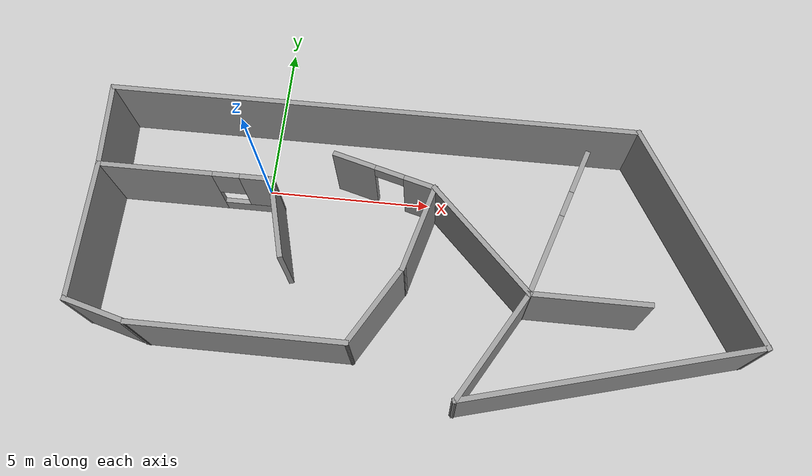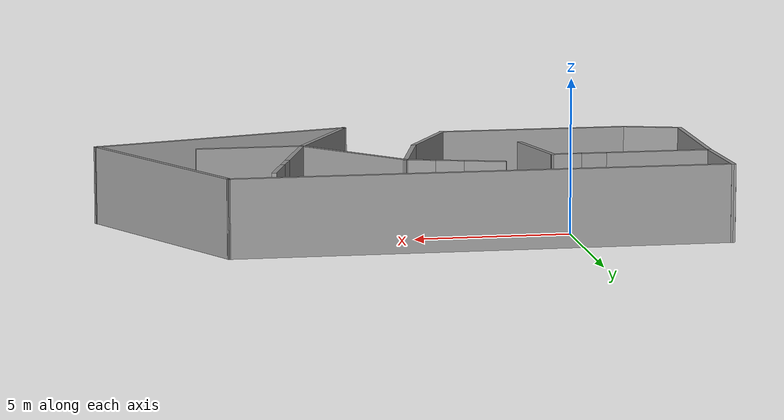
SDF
<?xml version='1.0'?>
<sdf version='1.7'>
  <model name='maze'>
    <pose>4.9378 -2.22526 0 0 -0 0</pose>
    <link name='Wall_0'>
      <collision name='Wall_0_Collision'>
        <geometry>
          <box>
            <size>4.25 0.15 2.5</size>
          </box>
        </geometry>
        <pose>0 0 1.25 0 -0 0</pose>
      </collision>
      <visual name='Wall_0_Visual'>
        <pose>0 0 1.25 0 -0 0</pose>
        <geometry>
          <box>
            <size>4.25 0.15 2.5</size>
          </box>
        </geometry>
        <material>
          <script>
            <uri>file://media/materials/scripts/gazebo.material</uri>
            <name>Gazebo/Grey</name>
          </script>
          <ambient>1 1 1 1</ambient>
        </material>
        <meta>
          <layer>0</layer>
        </meta>
      </visual>
      <pose>-9.5778 -0.404741 0 0 -0 -1.5708</pose>
    </link>
    <link name='Wall_1'>
      <collision name='Wall_1_Collision'>
        <geometry>
          <box>
            <size>2 0.15 2.5</size>
          </box>
        </geometry>
        <pose>0 0 1.25 0 -0 0</pose>
      </collision>
      <visual name='Wall_1_Visual'>
        <pose>0 0 1.25 0 -0 0</pose>
        <geometry>
          <box>
            <size>2 0.15 2.5</size>
          </box>
        </geometry>
        <material>
          <script>
            <uri>file://media/materials/scripts/gazebo.material</uri>
            <name>Gazebo/Grey</name>
          </script>
          <ambient>1 1 1 1</ambient>
        </material>
        <meta>
          <layer>0</layer>
        </meta>
      </visual>
      <pose>-8.68431 -2.69415 0 0 -0 -0.261799</pose>
    </link>
    <link name='Wall_10'>
      <collision name='Wall_10_Collision'>
        <geometry>
          <box>
            <size>2.69558 0.15 2.5</size>
          </box>
        </geometry>
        <pose>0 0 1.25 0 -0 0</pose>
      </collision>
      <visual name='Wall_10_Visual'>
        <pose>0 0 1.25 0 -0 0</pose>
        <geometry>
          <box>
            <size>2.69558 0.15 2.5</size>
          </box>
        </geometry>
        <material>
          <script>
            <uri>file://media/materials/scripts/gazebo.material</uri>
            <name>Gazebo/Grey</name>
          </script>
          <ambient>1 1 1 1</ambient>
        </material>
        <meta>
          <layer>0</layer>
        </meta>
      </visual>
      <pose>-9.6448 2.91629 0 0 -0 -1.51813</pose>
    </link>
    <link name='Wall_11'>
      <pose>-7.0278 1.64526 0 0 -0 0</pose>
      <visual name='Wall_11_Visual_0'>
        <pose>-0.898831 0 1.25 0 -0 0</pose>
        <geometry>
          <box>
            <size>3.45234 0.15 2.5</size>
          </box>
        </geometry>
        <material>
          <script>
            <uri>file://media/materials/scripts/gazebo.material</uri>
            <name>Gazebo/Grey</name>
          </script>
          <ambient>1 1 1 1</ambient>
        </material>
        <meta>
          <layer>0</layer>
        </meta>
      </visual>
      <collision name='Wall_11_Collision_0'>
        <geometry>
          <box>
            <size>3.45234 0.15 2.5</size>
          </box>
        </geometry>
        <pose>-0.898831 0 1.25 0 -0 0</pose>
      </collision>
      <visual name='Wall_11_Visual_1'>
        <pose>1.72617 0 0.25 0 -0 0</pose>
        <geometry>
          <box>
            <size>1.79766 0.15 0.5</size>
          </box>
        </geometry>
        <material>
          <script>
            <uri>file://media/materials/scripts/gazebo.material</uri>
            <name>Gazebo/Grey</name>
          </script>
          <ambient>1 1 1 1</ambient>
        </material>
        <meta>
          <layer>0</layer>
        </meta>
      </visual>
      <collision name='Wall_11_Collision_1'>
        <geometry>
          <box>
            <size>1.79766 0.15 0.5</size>
          </box>
        </geometry>
        <pose>1.72617 0 0.25 0 -0 0</pose>
      </collision>
      <visual name='Wall_11_Visual_2'>
        <pose>2.12617 0 1.5 0 -0 0</pose>
        <geometry>
          <box>
            <size>0.997662 0.15 2</size>
          </box>
        </geometry>
        <material>
          <script>
            <uri>file://media/materials/scripts/gazebo.material</uri>
            <name>Gazebo/Grey</name>
          </script>
          <ambient>1 1 1 1</ambient>
        </material>
        <meta>
          <layer>0</layer>
        </meta>
      </visual>
      <collision name='Wall_11_Collision_2'>
        <geometry>
          <box>
            <size>0.997662 0.15 2</size>
          </box>
        </geometry>
        <pose>2.12617 0 1.5 0 -0 0</pose>
      </collision>
      <visual name='Wall_11_Visual_3'>
        <pose>1.22734 0 1.9 0 -0 0</pose>
        <geometry>
          <box>
            <size>0.8 0.15 1.2</size>
          </box>
        </geometry>
        <material>
          <script>
            <uri>file://media/materials/scripts/gazebo.material</uri>
            <name>Gazebo/Grey</name>
          </script>
          <ambient>1 1 1 1</ambient>
        </material>
        <meta>
          <layer>0</layer>
        </meta>
      </visual>
      <collision name='Wall_11_Collision_3'>
        <geometry>
          <box>
            <size>0.8 0.15 1.2</size>
          </box>
        </geometry>
        <pose>1.22734 0 1.9 0 -0 0</pose>
      </collision>
    </link>
    <link name='Wall_12'>
      <collision name='Wall_12_Collision'>
        <geometry>
          <box>
            <size>2.5 0.15 2.5</size>
          </box>
        </geometry>
        <pose>0 0 1.25 0 -0 0</pose>
      </collision>
      <visual name='Wall_12_Visual'>
        <pose>0 0 1.25 0 -0 0</pose>
        <geometry>
          <box>
            <size>2.5 0.15 2.5</size>
          </box>
        </geometry>
        <material>
          <script>
            <uri>file://media/materials/scripts/gazebo.material</uri>
            <name>Gazebo/Grey</name>
          </script>
          <ambient>1 1 1 1</ambient>
        </material>
        <meta>
          <layer>0</layer>
        </meta>
      </visual>
      <pose>-4.17368 0.510296 0 0 -0 -1.309</pose>
    </link>
    <link name='Wall_14'>
      <pose>3.90634 1.14075 0 0 -0 -1.88778</pose>
      <visual name='Wall_14_Visual_0'>
        <pose>-1.69719 0 1.25 0 -0 0</pose>
        <geometry>
          <box>
            <size>1.40814 0.15 2.5</size>
          </box>
        </geometry>
        <material>
          <script>
            <uri>file://media/materials/scripts/gazebo.material</uri>
            <name>Gazebo/Grey</name>
          </script>
          <ambient>1 1 1 1</ambient>
        </material>
        <meta>
          <layer>0</layer>
        </meta>
      </visual>
      <collision name='Wall_14_Collision_0'>
        <geometry>
          <box>
            <size>1.40814 0.15 2.5</size>
          </box>
        </geometry>
        <pose>-1.69719 0 1.25 0 -0 0</pose>
      </collision>
      <visual name='Wall_14_Visual_1'>
        <pose>0.704072 0 0.25 0 -0 0</pose>
        <geometry>
          <box>
            <size>3.39438 0.15 0.5</size>
          </box>
        </geometry>
        <material>
          <script>
            <uri>file://media/materials/scripts/gazebo.material</uri>
            <name>Gazebo/Grey</name>
          </script>
          <ambient>1 1 1 1</ambient>
        </material>
        <meta>
          <layer>0</layer>
        </meta>
      </visual>
      <collision name='Wall_14_Collision_1'>
        <geometry>
          <box>
            <size>3.39438 0.15 0.5</size>
          </box>
        </geometry>
        <pose>0.704072 0 0.25 0 -0 0</pose>
      </collision>
      <visual name='Wall_14_Visual_2'>
        <pose>1.10407 0 1.5 0 -0 0</pose>
        <geometry>
          <box>
            <size>2.59438 0.15 2</size>
          </box>
        </geometry>
        <material>
          <script>
            <uri>file://media/materials/scripts/gazebo.material</uri>
            <name>Gazebo/Grey</name>
          </script>
          <ambient>1 1 1 1</ambient>
        </material>
        <meta>
          <layer>0</layer>
        </meta>
      </visual>
      <collision name='Wall_14_Collision_2'>
        <geometry>
          <box>
            <size>2.59438 0.15 2</size>
          </box>
        </geometry>
        <pose>1.10407 0 1.5 0 -0 0</pose>
      </collision>
      <visual name='Wall_14_Visual_3'>
        <pose>-0.593119 0 1.9 0 -0 0</pose>
        <geometry>
          <box>
            <size>0.8 0.15 1.2</size>
          </box>
        </geometry>
        <material>
          <script>
            <uri>file://media/materials/scripts/gazebo.material</uri>
            <name>Gazebo/Grey</name>
          </script>
          <ambient>1 1 1 1</ambient>
        </material>
        <meta>
          <layer>0</layer>
        </meta>
      </visual>
      <collision name='Wall_14_Collision_3'>
        <geometry>
          <box>
            <size>0.8 0.15 1.2</size>
          </box>
        </geometry>
        <pose>-0.593119 0 1.9 0 -0 0</pose>
      </collision>
    </link>
    <link name='Wall_15'>
      <collision name='Wall_15_Collision'>
        <geometry>
          <box>
            <size>3.5 0.15 2.5</size>
          </box>
        </geometry>
        <pose>0 0 1.25 0 -0 0</pose>
      </collision>
      <visual name='Wall_15_Visual'>
        <pose>0 0 1.25 0 -0 0</pose>
        <geometry>
          <box>
            <size>3.5 0.15 2.5</size>
          </box>
        </geometry>
        <material>
          <script>
            <uri>file://media/materials/scripts/gazebo.material</uri>
            <name>Gazebo/Grey</name>
          </script>
          <ambient>1 1 1 1</ambient>
        </material>
        <meta>
          <layer>0</layer>
        </meta>
      </visual>
      <pose>4.85623 -1.06962 0 0 -0 0</pose>
    </link>
    <link name='Wall_17'>
      <pose>-1.21509 2.23069 0 0 -0 2.87979</pose>
      <visual name='Wall_17_Visual_0'>
        <pose>-1.11253 0 1.25 0 -0 0</pose>
        <geometry>
          <box>
            <size>1.02495 0.15 2.5</size>
          </box>
        </geometry>
        <material>
          <script>
            <uri>file://media/materials/scripts/gazebo.material</uri>
            <name>Gazebo/Grey</name>
          </script>
          <ambient>1 1 1 1</ambient>
        </material>
        <meta>
          <layer>0</layer>
        </meta>
      </visual>
      <collision name='Wall_17_Collision_0'>
        <geometry>
          <box>
            <size>1.02495 0.15 2.5</size>
          </box>
        </geometry>
        <pose>-1.11253 0 1.25 0 -0 0</pose>
      </collision>
      <visual name='Wall_17_Visual_1'>
        <pose>0.962474 0 1.25 0 -0 0</pose>
        <geometry>
          <box>
            <size>1.32505 0.15 2.5</size>
          </box>
        </geometry>
        <material>
          <script>
            <uri>file://media/materials/scripts/gazebo.material</uri>
            <name>Gazebo/Grey</name>
          </script>
          <ambient>1 1 1 1</ambient>
        </material>
        <meta>
          <layer>0</layer>
        </meta>
      </visual>
      <collision name='Wall_17_Collision_1'>
        <geometry>
          <box>
            <size>1.32505 0.15 2.5</size>
          </box>
        </geometry>
        <pose>0.962474 0 1.25 0 -0 0</pose>
      </collision>
      <visual name='Wall_17_Visual_2'>
        <pose>-0.150051 0 2.25 0 -0 0</pose>
        <geometry>
          <box>
            <size>0.9 0.15 0.5</size>
          </box>
        </geometry>
        <material>
          <script>
            <uri>file://media/materials/scripts/gazebo.material</uri>
            <name>Gazebo/Grey</name>
          </script>
          <ambient>1 1 1 1</ambient>
        </material>
        <meta>
          <layer>0</layer>
        </meta>
      </visual>
      <collision name='Wall_17_Collision_2'>
        <geometry>
          <box>
            <size>0.9 0.15 0.5</size>
          </box>
        </geometry>
        <pose>-0.150051 0 2.25 0 -0 0</pose>
      </collision>
    </link>
    <link name='Wall_2'>
      <collision name='Wall_2_Collision'>
        <geometry>
          <box>
            <size>6.25 0.15 2.5</size>
          </box>
        </geometry>
        <pose>0 0 1.25 0 -0 0</pose>
      </collision>
      <visual name='Wall_2_Visual'>
        <pose>0 0 1.25 0 -0 0</pose>
        <geometry>
          <box>
            <size>6.25 0.15 2.5</size>
          </box>
        </geometry>
        <material>
          <script>
            <uri>file://media/materials/scripts/gazebo.material</uri>
            <name>Gazebo/Grey</name>
          </script>
          <ambient>1 1 1 1</ambient>
        </material>
        <meta>
          <layer>0</layer>
        </meta>
      </visual>
      <pose>-4.74083 -2.93356 0 0 -0 0</pose>
    </link>
    <link name='Wall_3'>
      <collision name='Wall_3_Collision'>
        <geometry>
          <box>
            <size>2.75 0.15 2.5</size>
          </box>
        </geometry>
        <pose>0 0 1.25 0 -0 0</pose>
      </collision>
      <visual name='Wall_3_Visual'>
        <pose>0 0 1.25 0 -0 0</pose>
        <geometry>
          <box>
            <size>2.75 0.15 2.5</size>
          </box>
        </geometry>
        <material>
          <script>
            <uri>file://media/materials/scripts/gazebo.material</uri>
            <name>Gazebo/Grey</name>
          </script>
          <ambient>1 1 1 1</ambient>
        </material>
        <meta>
          <layer>0</layer>
        </meta>
      </visual>
      <pose>-1.04083 -1.80772 0 0 -0 1.0472</pose>
    </link>
    <link name='Wall_4'>
      <collision name='Wall_4_Collision'>
        <geometry>
          <box>
            <size>2.75 0.15 2.5</size>
          </box>
        </geometry>
        <pose>0 0 1.25 0 -0 0</pose>
      </collision>
      <visual name='Wall_4_Visual'>
        <pose>0 0 1.25 0 -0 0</pose>
        <geometry>
          <box>
            <size>2.75 0.15 2.5</size>
          </box>
        </geometry>
        <material>
          <script>
            <uri>file://media/materials/scripts/gazebo.material</uri>
            <name>Gazebo/Grey</name>
          </script>
          <ambient>1 1 1 1</ambient>
        </material>
        <meta>
          <layer>0</layer>
        </meta>
      </visual>
      <pose>-0.054368 0.573814 0 0 -0 1.309</pose>
    </link>
    <link name='Wall_5'>
      <collision name='Wall_5_Collision'>
        <geometry>
          <box>
            <size>4.25 0.15 2.5</size>
          </box>
        </geometry>
        <pose>0 0 1.25 0 -0 0</pose>
      </collision>
      <visual name='Wall_5_Visual'>
        <pose>0 0 1.25 0 -0 0</pose>
        <geometry>
          <box>
            <size>4.25 0.15 2.5</size>
          </box>
        </geometry>
        <material>
          <script>
            <uri>file://media/materials/scripts/gazebo.material</uri>
            <name>Gazebo/Grey</name>
          </script>
          <ambient>1 1 1 1</ambient>
        </material>
        <meta>
          <layer>0</layer>
        </meta>
      </visual>
      <pose>1.73167 0.379948 0 0 -0 -0.785398</pose>
    </link>
    <link name='Wall_6'>
      <collision name='Wall_6_Collision'>
        <geometry>
          <box>
            <size>3.75 0.15 2.5</size>
          </box>
        </geometry>
        <pose>0 0 1.25 0 -0 0</pose>
      </collision>
      <visual name='Wall_6_Visual'>
        <pose>0 0 1.25 0 -0 0</pose>
        <geometry>
          <box>
            <size>3.75 0.15 2.5</size>
          </box>
        </geometry>
        <material>
          <script>
            <uri>file://media/materials/scripts/gazebo.material</uri>
            <name>Gazebo/Grey</name>
          </script>
          <ambient>1 1 1 1</ambient>
        </material>
        <meta>
          <layer>0</layer>
        </meta>
      </visual>
      <pose>2.28123 -2.62847 0 0 -0 -2.0944</pose>
    </link>
    <link name='Wall_7'>
      <collision name='Wall_7_Collision'>
        <geometry>
          <box>
            <size>8.75 0.15 2.5</size>
          </box>
        </geometry>
        <pose>0 0 1.25 0 -0 0</pose>
      </collision>
      <visual name='Wall_7_Visual'>
        <pose>0 0 1.25 0 -0 0</pose>
        <geometry>
          <box>
            <size>8.75 0.15 2.5</size>
          </box>
        </geometry>
        <material>
          <script>
            <uri>file://media/materials/scripts/gazebo.material</uri>
            <name>Gazebo/Grey</name>
          </script>
          <ambient>1 1 1 1</ambient>
        </material>
        <meta>
          <layer>0</layer>
        </meta>
      </visual>
      <pose>5.53472 -3.07439 0 0 -0 0.261799</pose>
    </link>
    <link name='Wall_8'>
      <collision name='Wall_8_Collision'>
        <geometry>
          <box>
            <size>7.25 0.15 2.5</size>
          </box>
        </geometry>
        <pose>0 0 1.25 0 -0 0</pose>
      </collision>
      <visual name='Wall_8_Visual'>
        <pose>0 0 1.25 0 -0 0</pose>
        <geometry>
          <box>
            <size>7.25 0.15 2.5</size>
          </box>
        </geometry>
        <material>
          <script>
            <uri>file://media/materials/scripts/gazebo.material</uri>
            <name>Gazebo/Grey</name>
          </script>
          <ambient>1 1 1 1</ambient>
        </material>
        <meta>
          <layer>0</layer>
        </meta>
      </visual>
      <pose>7.9132 1.11292 0 0 -0 2.0944</pose>
    </link>
    <link name='Wall_9'>
      <collision name='Wall_9_Collision'>
        <geometry>
          <box>
            <size>16 0.15 2.5</size>
          </box>
        </geometry>
        <pose>0 0 1.25 0 -0 0</pose>
      </collision>
      <visual name='Wall_9_Visual'>
        <pose>0 0 1.25 0 -0 0</pose>
        <geometry>
          <box>
            <size>16 0.15 2.5</size>
          </box>
        </geometry>
        <material>
          <script>
            <uri>file://media/materials/scripts/gazebo.material</uri>
            <name>Gazebo/Grey</name>
          </script>
          <ambient>1 1 1 1</ambient>
        </material>
        <meta>
          <layer>0</layer>
        </meta>
      </visual>
      <pose>-1.7868 4.18731 0 0 -0 3.14159</pose>
    </link>
    <static>1</static>
  </model>
</sdf>
